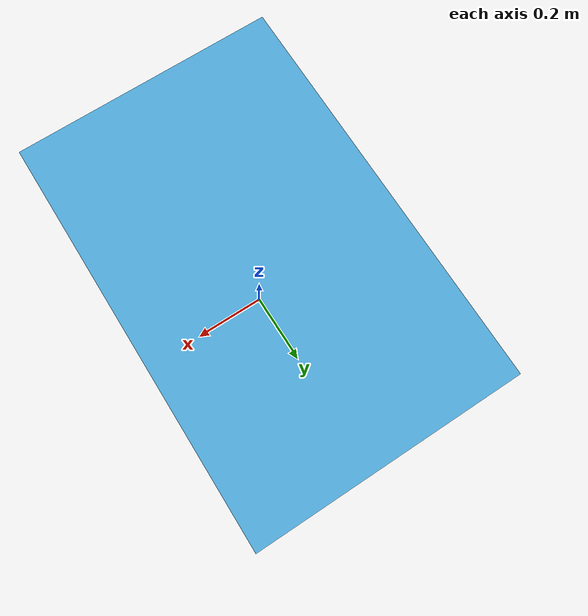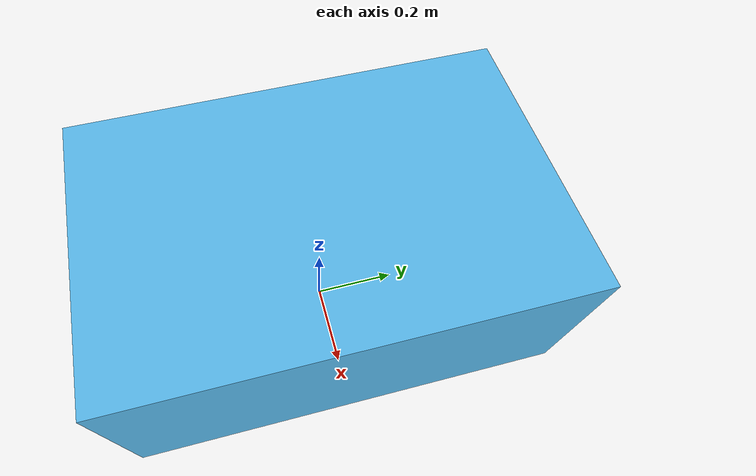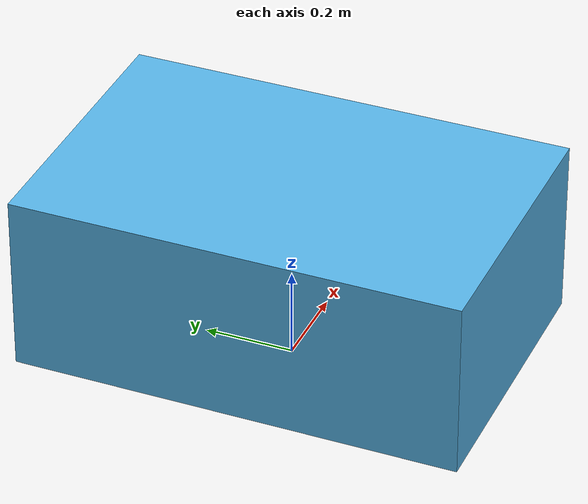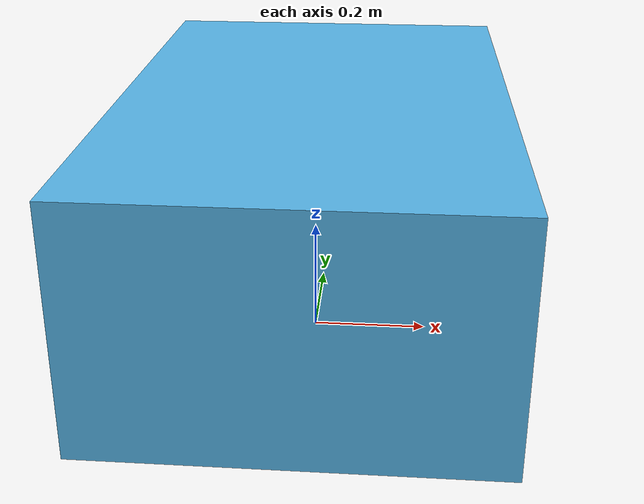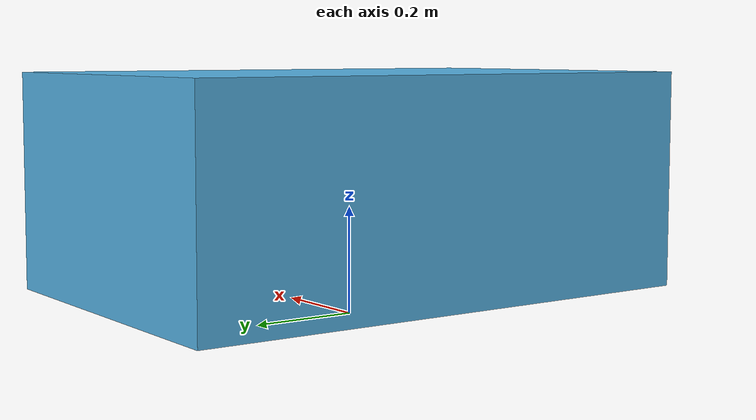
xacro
<?xml version="1.0" ?>
<robot name="body" xmlns:xacro="http://ros.org/wiki/xacro">
<link name="base_link" />

<xacro:property name="b_m" value="1.68"/>
<xacro:property name="b_m2" value="${b_m/12}"/>
<xacro:property name="b_w" value="0.65"/>
<xacro:property name="b_h" value="1.0"/>
<xacro:property name="b_d" value="0.4"/>
<link name="body">
   <visual>
　　<geometry>
　　　<box size="${b_w} ${b_h} ${b_d}" />
     </geometry>
  </visual>
   <collision>
　　<geometry>
　　　<box size="${b_w} ${b_h} ${b_d}" />
     </geometry>
  </collision>
  <inertial>
     <origin xyz="0 0 0" rpy="0 0 0" />
     <mass value="${b_m}" />
    <inertia ixx="${b_m2*(b_h*b_h+b_d*b_d)}" ixy="0"    ixz="0"
                 iyx="0"   iyy="${b_m2*(b_w*b_w+b_d*b_d)}"  iyz="0"
		 izx="0"   izy="0"  izz="${b_m2*(b_w*b_w+b_h*b_h)}" />
  </inertial>
</link>
<joint name="body_joint" type="fixed">
<parent link="base_link" />
   <child link="body" />
   <origin xyz="0 0 0.25" rpy="0 0 0" />
</joint>
</robot>
